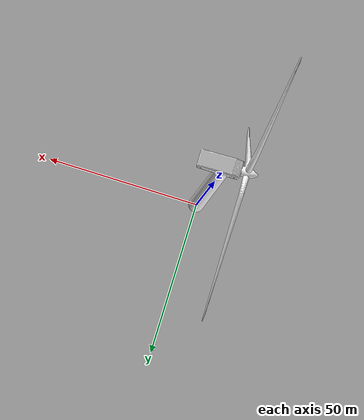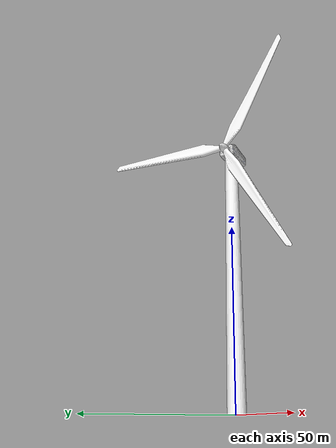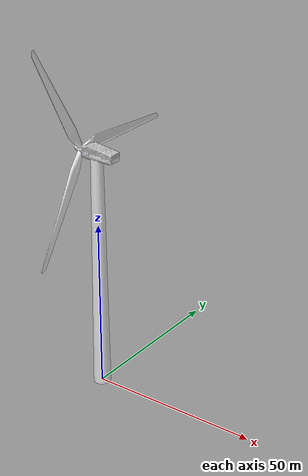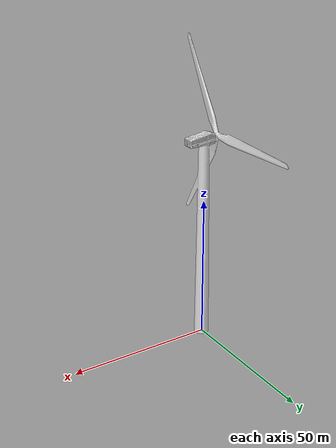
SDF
<?xml version="1.0" ?>
<sdf version="1.6">
  <model name="Vestas_V52">
    <static>true</static>
    <link name="link">
      <collision name="collision">
        <geometry>
          <mesh>
            <uri>model://Vestas_V52/meshes/model.dae</uri>
          </mesh>
        </geometry>
      </collision>
      <visual name="wind_turbine">
        <geometry>
          <mesh>
            <uri>model://Vestas_V52/meshes/model.dae</uri>
	         </mesh>
        </geometry>
     </visual>
    </link>
  </model>
</sdf>
